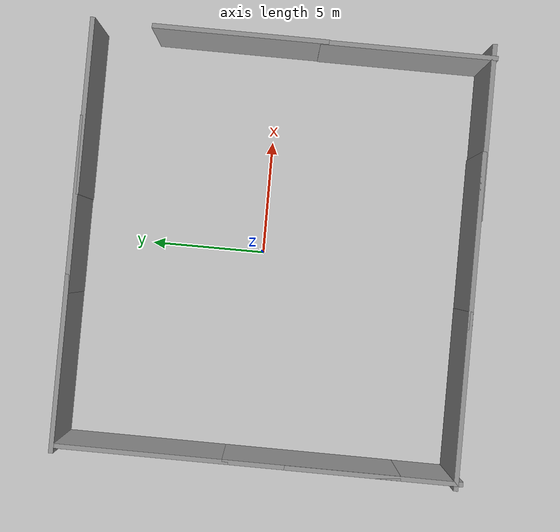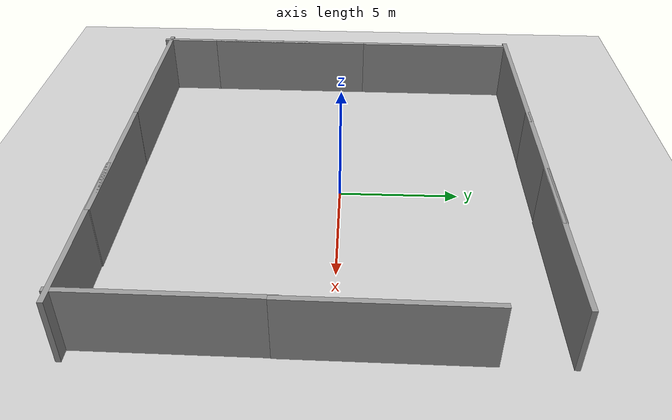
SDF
<sdf version="1.10">
 <world name="empty">
  <physics name="1ms" type="ignored">
   <max_step_size>0.004</max_step_size>
   <real_time_factor>1</real_time_factor>
   <real_time_update_rate>250</real_time_update_rate>
  </physics>
  <plugin name="gz::sim::systems::Physics" filename="gz-sim-physics-system"/>
  <plugin name="gz::sim::systems::UserCommands" filename="gz-sim-user-commands-system"/>
  <plugin name="gz::sim::systems::SceneBroadcaster" filename="gz-sim-scene-broadcaster-system"/>
  <plugin name="gz::sim::systems::Contact" filename="gz-sim-contact-system"/>
  <plugin name="gz::sim::systems::Sensors" filename="gz-sim-sensors-system"/>
  <plugin name="gz::sim::systems::Imu" filename="gz-sim-imu-system"/>
  <gravity>0 0 -9.8000000000000007</gravity>
  <magnetic_field>5.5644999999999998e-06 2.2875799999999999e-05 -4.2388400000000002e-05</magnetic_field>
  <atmosphere type="adiabatic"/>
  <scene>
   <ambient>0.400000006 0.400000006 0.400000006 1</ambient>
   <background>0.699999988 0.699999988 0.699999988 1</background>
   <shadows>true</shadows>
  </scene>
  <model name="ground_plane">
   <static>true</static>
   <link name="link">
    <collision name="collision">
     <geometry><plane><normal>0 0 1</normal><size>100 100</size></plane></geometry>
    </collision>
    <visual name="visual">
     <geometry><plane><normal>0 0 1</normal><size>100 100</size></plane></geometry>
     <material>
      <ambient>0.800000012 0.800000012 0.800000012 1</ambient>
      <diffuse>0.800000012 0.800000012 0.800000012 1</diffuse>
      <specular>0.800000012 0.800000012 0.800000012 1</specular>
     </material>
    </visual>
    <inertial>
     <mass>1</mass>
     <inertia><ixx>1</ixx><ixy>0</ixy><ixz>0</ixz><iyy>1</iyy><iyz>0</iyz><izz>1</izz></inertia>
    </inertial>
   </link>
  </model>
  <model name="grey_wall">
   <static>true</static>
   <link name="link">
    <pose>0 0 1.3999999999999999 0 0 0</pose>
    <collision name="collision">
     <geometry><box><size>7.5 0.20000000000000001 2.7999999999999998</size></box></geometry>
    </collision>
    <visual name="visual">
     <cast_shadows>false</cast_shadows>
     <geometry><box><size>7.5 0.20000000000000001 2.7999999999999998</size></box></geometry>
     <material>
      <script>
       <uri>https://fuel.gazebosim.org/1.0/openrobotics/models/grey wall/3/files/materials/scripts</uri>
       <uri>https://fuel.gazebosim.org/1.0/openrobotics/models/grey wall/3/files/materials/textures</uri>
       <name>vrc/grey_wall</name>
      </script>
     </material>
    </visual>
    <inertial>
     <mass>1</mass>
     <inertia><ixx>1</ixx><ixy>0</ixy><ixz>0</ixz><iyy>1</iyy><iyz>0</iyz><izz>1</izz></inertia>
    </inertial>
   </link>
   <pose>-5.448154277161251 8.0304941926118616 0 0 0 0</pose>
  </model>
  <model name="grey_wall_0">
   <static>true</static>
   <link name="link">
    <pose>0 0 1.3999999999999999 0 0 0</pose>
    <collision name="collision">
     <geometry><box><size>7.5 0.20000000000000001 2.7999999999999998</size></box></geometry>
    </collision>
    <visual name="visual">
     <cast_shadows>false</cast_shadows>
     <geometry><box><size>7.5 0.20000000000000001 2.7999999999999998</size></box></geometry>
     <material>
      <script>
       <uri>https://fuel.gazebosim.org/1.0/openrobotics/models/grey wall/3/files/materials/scripts</uri>
       <uri>https://fuel.gazebosim.org/1.0/openrobotics/models/grey wall/3/files/materials/textures</uri>
       <name>vrc/grey_wall</name>
      </script>
     </material>
    </visual>
    <inertial>
     <mass>1</mass>
     <inertia><ixx>1</ixx><ixy>0</ixy><ixz>0</ixz><iyy>1</iyy><iyz>0</iyz><izz>1</izz></inertia>
    </inertial>
   </link>
   <pose>-8.8939113616943359 4.3755970001220703 0 0 0 1.5665299667756876</pose>
  </model>
  <model name="grey_wall_1">
   <static>true</static>
   <link name="link">
    <pose>0 0 1.3999999999999999 0 0 0</pose>
    <collision name="collision">
     <geometry><box><size>7.5 0.20000000000000001 2.7999999999999998</size></box></geometry>
    </collision>
    <visual name="visual">
     <cast_shadows>false</cast_shadows>
     <geometry><box><size>7.5 0.20000000000000001 2.7999999999999998</size></box></geometry>
     <material>
      <script>
       <uri>https://fuel.gazebosim.org/1.0/openrobotics/models/grey wall/3/files/materials/scripts</uri>
       <uri>https://fuel.gazebosim.org/1.0/openrobotics/models/grey wall/3/files/materials/textures</uri>
       <name>vrc/grey_wall</name>
      </script>
     </material>
    </visual>
    <inertial>
     <mass>1</mass>
     <inertia><ixx>1</ixx><ixy>0</ixy><ixz>0</ixz><iyy>1</iyy><iyz>0</iyz><izz>1</izz></inertia>
    </inertial>
   </link>
   <pose>1.2551037846757858 8.023968621289475 0 0 0 0</pose>
  </model>
  <model name="grey_wall_0_1">
   <static>true</static>
   <link name="link">
    <pose>0 0 1.3999999999999999 0 0 0</pose>
    <collision name="collision">
     <geometry><box><size>7.5 0.20000000000000001 2.7999999999999998</size></box></geometry>
    </collision>
    <visual name="visual">
     <cast_shadows>false</cast_shadows>
     <geometry><box><size>7.5 0.20000000000000001 2.7999999999999998</size></box></geometry>
     <material>
      <script>
       <uri>https://fuel.gazebosim.org/1.0/openrobotics/models/grey wall/3/files/materials/scripts</uri>
       <uri>https://fuel.gazebosim.org/1.0/openrobotics/models/grey wall/3/files/materials/textures</uri>
       <name>vrc/grey_wall</name>
      </script>
     </material>
    </visual>
    <inertial>
     <mass>1</mass>
     <inertia><ixx>1</ixx><ixy>0</ixy><ixz>0</ixz><iyy>1</iyy><iyz>0</iyz><izz>1</izz></inertia>
    </inertial>
   </link>
   <pose>-8.9230759540984348 -2.8532397929636293 0 0 0 1.5665299667756876</pose>
  </model>
  <model name="grey_wall_0_2">
   <static>true</static>
   <link name="link">
    <pose>0 0 1.3999999999999999 0 0 0</pose>
    <collision name="collision">
     <geometry><box><size>7.5 0.20000000000000001 2.7999999999999998</size></box></geometry>
    </collision>
    <visual name="visual">
     <cast_shadows>false</cast_shadows>
     <geometry><box><size>7.5 0.20000000000000001 2.7999999999999998</size></box></geometry>
     <material>
      <script>
       <uri>https://fuel.gazebosim.org/1.0/openrobotics/models/grey wall/3/files/materials/scripts</uri>
       <uri>https://fuel.gazebosim.org/1.0/openrobotics/models/grey wall/3/files/materials/textures</uri>
       <name>vrc/grey_wall</name>
      </script>
     </material>
    </visual>
    <inertial>
     <mass>1</mass>
     <inertia><ixx>1</ixx><ixy>0</ixy><ixz>0</ixz><iyy>1</iyy><iyz>0</iyz><izz>1</izz></inertia>
    </inertial>
   </link>
   <pose>-8.938431348258467 -5.4737444213192861 0 0 0 1.5665299667756876</pose>
  </model>
  <model name="grey_wall_2">
   <static>true</static>
   <link name="link">
    <pose>0 0 1.3999999999999999 0 0 0</pose>
    <collision name="collision">
     <geometry><box><size>7.5 0.20000000000000001 2.7999999999999998</size></box></geometry>
    </collision>
    <visual name="visual">
     <cast_shadows>false</cast_shadows>
     <geometry><box><size>7.5 0.20000000000000001 2.7999999999999998</size></box></geometry>
     <material>
      <script>
       <uri>https://fuel.gazebosim.org/1.0/openrobotics/models/grey wall/3/files/materials/scripts</uri>
       <uri>https://fuel.gazebosim.org/1.0/openrobotics/models/grey wall/3/files/materials/textures</uri>
       <name>vrc/grey_wall</name>
      </script>
     </material>
    </visual>
    <inertial>
     <mass>1</mass>
     <inertia><ixx>1</ixx><ixy>0</ixy><ixz>0</ixz><iyy>1</iyy><iyz>0</iyz><izz>1</izz></inertia>
    </inertial>
   </link>
   <pose>-5.4997615434397407 -8.9362273892507584 0 0 0 0</pose>
  </model>
  <model name="grey_wall_3">
   <static>true</static>
   <link name="link">
    <pose>0 0 1.3999999999999999 0 0 0</pose>
    <collision name="collision">
     <geometry><box><size>7.5 0.20000000000000001 2.7999999999999998</size></box></geometry>
    </collision>
    <visual name="visual">
     <cast_shadows>false</cast_shadows>
     <geometry><box><size>7.5 0.20000000000000001 2.7999999999999998</size></box></geometry>
     <material>
      <script>
       <uri>https://fuel.gazebosim.org/1.0/openrobotics/models/grey wall/3/files/materials/scripts</uri>
       <uri>https://fuel.gazebosim.org/1.0/openrobotics/models/grey wall/3/files/materials/textures</uri>
       <name>vrc/grey_wall</name>
      </script>
     </material>
    </visual>
    <inertial>
     <mass>1</mass>
     <inertia><ixx>1</ixx><ixy>0</ixy><ixz>0</ixz><iyy>1</iyy><iyz>0</iyz><izz>1</izz></inertia>
    </inertial>
   </link>
   <pose>1.2380820345382257 -8.9407392525751455 0 0 0 0</pose>
  </model>
  <model name="grey_wall_3_1">
   <static>true</static>
   <link name="link">
    <pose>0 0 1.3999999999999999 0 0 0</pose>
    <collision name="collision">
     <geometry><box><size>7.5 0.20000000000000001 2.7999999999999998</size></box></geometry>
    </collision>
    <visual name="visual">
     <cast_shadows>false</cast_shadows>
     <geometry><box><size>7.5 0.20000000000000001 2.7999999999999998</size></box></geometry>
     <material>
      <script>
       <uri>https://fuel.gazebosim.org/1.0/openrobotics/models/grey wall/3/files/materials/scripts</uri>
       <uri>https://fuel.gazebosim.org/1.0/openrobotics/models/grey wall/3/files/materials/textures</uri>
       <name>vrc/grey_wall</name>
      </script>
     </material>
    </visual>
    <inertial>
     <mass>1</mass>
     <inertia><ixx>1</ixx><ixy>0</ixy><ixz>0</ixz><iyy>1</iyy><iyz>0</iyz><izz>1</izz></inertia>
    </inertial>
   </link>
   <pose>5.7999393367777632 -8.9790565885495823 0 0 0 0</pose>
  </model>
  <model name="grey_wall_0_1_1">
   <static>true</static>
   <link name="link">
    <pose>0 0 1.3999999999999999 0 0 0</pose>
    <collision name="collision">
     <geometry><box><size>7.5 0.20000000000000001 2.7999999999999998</size></box></geometry>
    </collision>
    <visual name="visual">
     <cast_shadows>false</cast_shadows>
     <geometry><box><size>7.5 0.20000000000000001 2.7999999999999998</size></box></geometry>
     <material>
      <script>
       <uri>https://fuel.gazebosim.org/1.0/openrobotics/models/grey wall/3/files/materials/scripts</uri>
       <uri>https://fuel.gazebosim.org/1.0/openrobotics/models/grey wall/3/files/materials/textures</uri>
       <name>vrc/grey_wall</name>
      </script>
     </material>
    </visual>
    <inertial>
     <mass>1</mass>
     <inertia><ixx>1</ixx><ixy>0</ixy><ixz>0</ixz><iyy>1</iyy><iyz>0</iyz><izz>1</izz></inertia>
    </inertial>
   </link>
   <pose>8.9736451702131728 -5.4145587337699022 0 0 0 1.5665299667756876</pose>
  </model>
  <model name="grey_wall_0_1_2">
   <static>true</static>
   <link name="link">
    <pose>0 0 1.3999999999999999 0 0 0</pose>
    <collision name="collision">
     <geometry><box><size>7.5 0.20000000000000001 2.7999999999999998</size></box></geometry>
    </collision>
    <visual name="visual">
     <cast_shadows>false</cast_shadows>
     <geometry><box><size>7.5 0.20000000000000001 2.7999999999999998</size></box></geometry>
     <material>
      <script>
       <uri>https://fuel.gazebosim.org/1.0/openrobotics/models/grey wall/3/files/materials/scripts</uri>
       <uri>https://fuel.gazebosim.org/1.0/openrobotics/models/grey wall/3/files/materials/textures</uri>
       <name>vrc/grey_wall</name>
      </script>
     </material>
    </visual>
    <inertial>
     <mass>1</mass>
     <inertia><ixx>1</ixx><ixy>0</ixy><ixz>0</ixz><iyy>1</iyy><iyz>0</iyz><izz>1</izz></inertia>
    </inertial>
   </link>
   <pose>9.0243771333314236 1.7302447305000008 0 0 0 1.5665299667756876</pose>
  </model>
  <model name="grey_wall_1_1">
   <static>true</static>
   <link name="link">
    <pose>0 0 1.3999999999999999 0 0 0</pose>
    <collision name="collision">
     <geometry><box><size>7.5 0.20000000000000001 2.7999999999999998</size></box></geometry>
    </collision>
    <visual name="visual">
     <cast_shadows>false</cast_shadows>
     <geometry><box><size>7.5 0.20000000000000001 2.7999999999999998</size></box></geometry>
     <material>
      <script>
       <uri>https://fuel.gazebosim.org/1.0/openrobotics/models/grey wall/3/files/materials/scripts</uri>
       <uri>https://fuel.gazebosim.org/1.0/openrobotics/models/grey wall/3/files/materials/textures</uri>
       <name>vrc/grey_wall</name>
      </script>
     </material>
    </visual>
    <inertial>
     <mass>1</mass>
     <inertia><ixx>1</ixx><ixy>0</ixy><ixz>0</ixz><iyy>1</iyy><iyz>0</iyz><izz>1</izz></inertia>
    </inertial>
   </link>
   <pose>5.4232015582964923 7.9974526425321395 0 0 0 0</pose>
  </model>
  <model name="ground_plane_1">
   <static>true</static>
   <link name="link">
    <collision name="collision">
     <geometry><plane><normal>0 0 1</normal><size>100 100</size></plane></geometry>
    </collision>
    <visual name="visual">
     <geometry><plane><normal>0 0 1</normal><size>100 100</size></plane></geometry>
     <material>
      <ambient>0.800000012 0.800000012 0.800000012 1</ambient>
      <diffuse>0.800000012 0.800000012 0.800000012 1</diffuse>
      <specular>0.800000012 0.800000012 0.800000012 1</specular>
     </material>
    </visual>
    <inertial>
     <mass>1</mass>
     <inertia><ixx>1</ixx><ixy>0</ixy><ixz>0</ixz><iyy>1</iyy><iyz>0</iyz><izz>1</izz></inertia>
    </inertial>
   </link>
   <pose>2.0537892201298837 5.2521870276062721 0 0 0 0</pose>
  </model>
  <light name="sun" type="directional">
   <pose>0 0 10 0 0 0</pose>
   <intensity>1</intensity>
   <direction>-0.5 0.10000000000000001 -0.90000000000000002</direction>
   <diffuse>0.800000012 0.800000012 0.800000012 1</diffuse>
   <specular>0.200000003 0.200000003 0.200000003 1</specular>
   <attenuation>
    <range>1000</range>
    <linear>0.0099999997764825821</linear>
    <constant>0.89999997615814209</constant>
    <quadratic>0.0010000000474974513</quadratic>
   </attenuation>
   <spot><inner_angle>0</inner_angle><outer_angle>0</outer_angle><falloff>0</falloff></spot>
  </light>
 </world>
</sdf>
